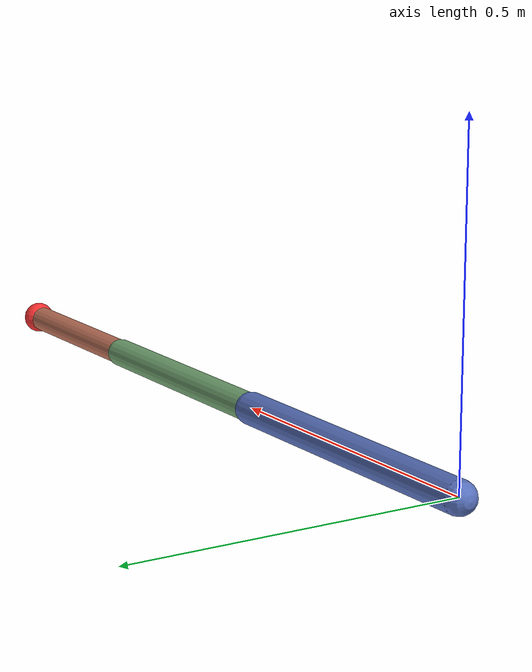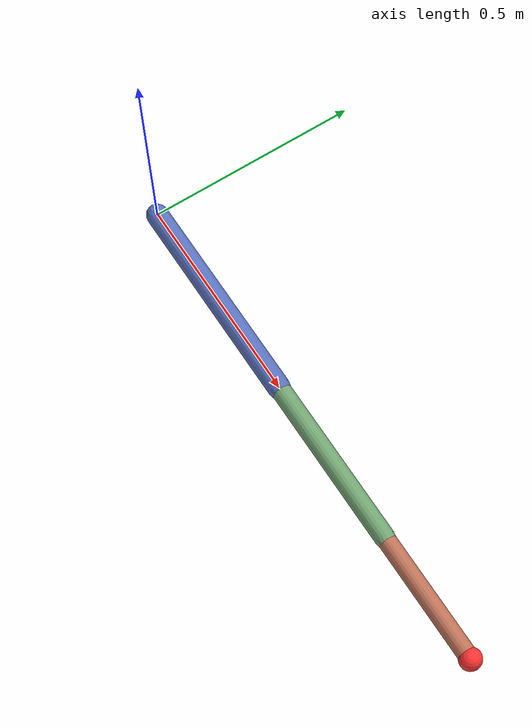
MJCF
<mujoco model="lab04_planar3">
  <compiler angle="radian"/>
  <option timestep="0.002" gravity="0 0 0" integrator="RK4"/>

  <worldbody>
    <body name="link1" pos="0 0 0">
      <joint name="shoulder" type="hinge" axis="0 0 1" damping="0.12" limited="true" range="-3.0 3.0"/>
      <geom type="capsule" fromto="0 0 0 0.5 0 0" size="0.025" mass="0.8" rgba="0.35 0.45 0.75 1"/>

      <body name="link2" pos="0.5 0 0">
        <joint name="elbow" type="hinge" axis="0 0 1" damping="0.10" limited="true" range="-2.8 2.8"/>
        <geom type="capsule" fromto="0 0 0 0.4 0 0" size="0.022" mass="0.6" rgba="0.45 0.65 0.45 1"/>

        <body name="link3" pos="0.4 0 0">
          <joint name="wrist" type="hinge" axis="0 0 1" damping="0.08" limited="true" range="-2.8 2.8"/>
          <geom type="capsule" fromto="0 0 0 0.3 0 0" size="0.020" mass="0.4" rgba="0.75 0.45 0.35 1"/>
          <site name="ee" pos="0.3 0 0" size="0.025" rgba="1 0.2 0.2 1"/>
        </body>
      </body>
    </body>
  </worldbody>

  <actuator>
    <motor name="shoulder_motor" joint="shoulder" gear="1" ctrllimited="true" ctrlrange="-10 10"/>
    <motor name="elbow_motor" joint="elbow" gear="1" ctrllimited="true" ctrlrange="-8 8"/>
    <motor name="wrist_motor" joint="wrist" gear="1" ctrllimited="true" ctrlrange="-6 6"/>
  </actuator>
</mujoco>
